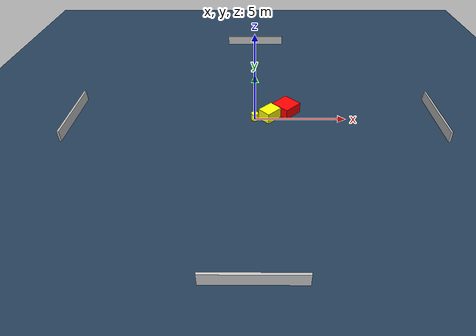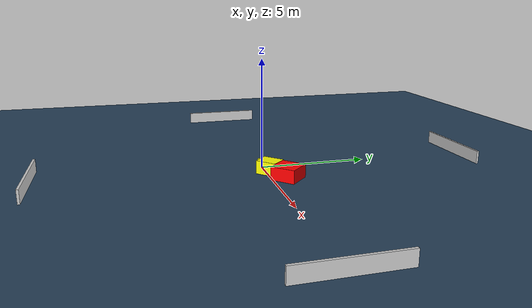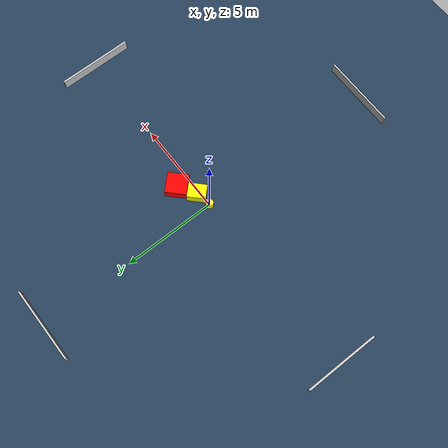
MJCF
<?xml version="1.0" ?>
<mujoco model="generated_environment">
  <option timestep="0.01" integrator="RK4" cone="elliptic"/>
  <default>
    <geom density="1"/>
  </default>
  <asset>
    <texture builtin="gradient" height="3072" name="skybox" rgb1="0.3 0.5 0.7" rgb2="0 0 0" type="skybox" width="512"/>
    <texture builtin="checker" height="300" name="groundplane" rgb1="0.2 0.3 0.4" rgb2="0.1 0.2 0.3" type="2d" width="300"/>
    <material name="groundplane" reflectance="0.2" texrepeat="5 5" texture="groundplane"/>
  </asset>
  <worldbody>
    <light dir="0 0 -1" directional="true" pos="0 0 1.5"/>
    <geom condim="3" friction="0.5 0.005 0.001" material="groundplane" name="floor" pos="0 0 0" size="0 0 0.05" type="plane"/>
    <body name="walls">
      <geom name="wall_1" condim="4" pos="-10.0 0.0 0.3" rgba="0.800000011920929 0.800000011920929 0.800000011920929 1.0" size="0.05 2.0 0.3" type="box"/>
      <geom name="wall_2" condim="4" pos="10.0 0.0 0.3" rgba="0.800000011920929 0.800000011920929 0.800000011920929 1.0" size="0.05 2.0 0.3" type="box"/>
      <geom name="wall_3" condim="4" pos="0.0 -10.0 0.3" rgba="0.800000011920929 0.800000011920929 0.800000011920929 1.0" size="2.0 0.05 0.3" type="box"/>
      <geom name="wall_4" condim="4" pos="0.0 10.0 0.3" rgba="0.800000011920929 0.800000011920929 0.800000011920929 1.0" size="2.0 0.05 0.3" type="box"/>
    </body>
    <body name="robot">
      <joint name="joint_x" type="slide" pos="0 0 0" axis="1 0 0"/>
      <joint name="joint_y" type="slide" pos="0 0 0" axis="0 1 0"/>
      <geom name="robot" type="cylinder" pos="0.0 0.0 0.2" size="0.2 0.2 0.0" mass="5.0" friction="1.0 0.005 0.0001" condim="4" rgba="1.0 1.0 0.0 1.0"/>
    </body>
    <body name="obstacle_1_movable">
      <geom name="obstacle_1_movable" condim="4" pos="0.8280092795439915 0.15348860564342784 0.3" euler="0 0 44.39871682330932" friction="0.0 0.005 0.001" rgba="1.0 1.0 0.0 1.0" size="0.4838434184031567 0.38380739894576665 0.3" type="box" mass="0.1"/>
      <joint type="free"/>
    </body>
    <body name="obstacle_2_static">
      <geom name="obstacle_2_static" condim="4" pos="1.7652239187880514 0.7164458163466046 0.3" euler="0 0 314.76021307970683" friction="0.0 0.005 0.001" rgba="1.0 0.0 0.0 1.0" size="0.5466134587758369 0.557096443315857 0.3" type="box"/>
    </body>
  </worldbody>
  <actuator>
    <motor name="actuator_x" joint="joint_x" gear="1" ctrlrange="-1 1"/>
    <motor name="actuator_y" joint="joint_y" gear="1" ctrlrange="-1 1"/>
  </actuator>
</mujoco>
